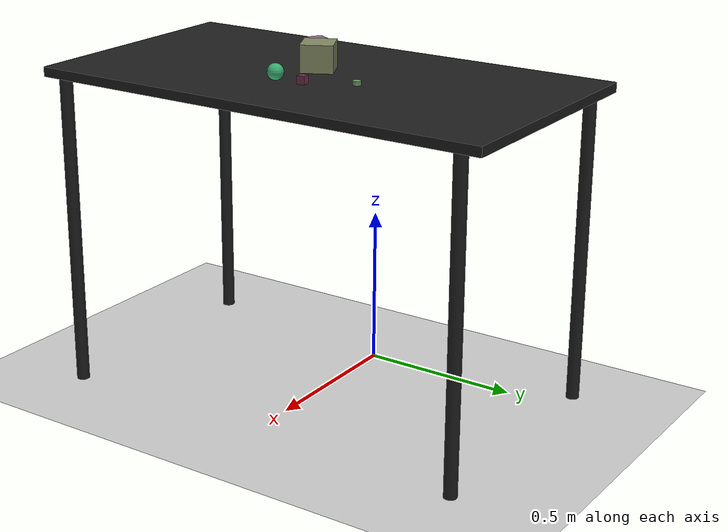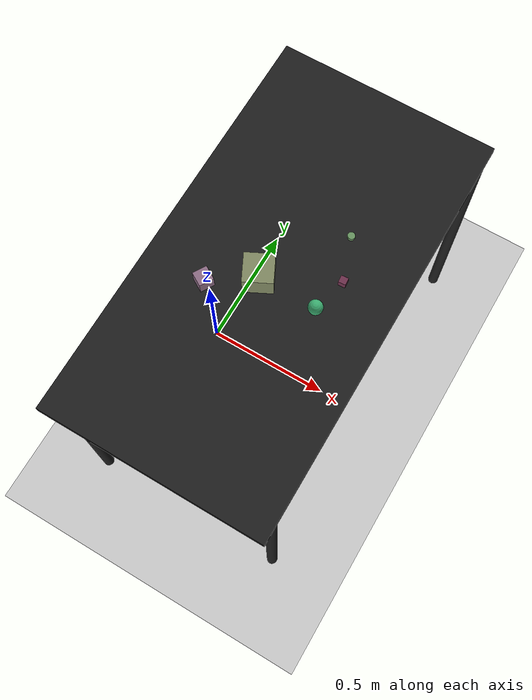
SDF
<?xml version="1.0" ?>
<sdf version="1.6">
  <world name="arm_world">
    <plugin filename="gz-sim-physics-system" name="gz::sim::systems::Physics">
      <engine>
        <filename>libgz-physics-bullet-featherstone-plugin.so</filename>
      </engine>
    </plugin>
    <plugin filename="gz-sim-user-commands-system" name="gz::sim::systems::UserCommands"/>
    <plugin filename="gz-sim-scene-broadcaster-system" name="gz::sim::systems::SceneBroadcaster"/>
    <plugin filename="gz-sim-sensors-system" name="gz::sim::systems::Sensors">
      <render_engine>ogre2</render_engine>
    </plugin>
    <gravity>0.0 0.0 -9.8</gravity>
    <scene>
      <shadows>false</shadows>
    </scene>
    <gui>
      <camera name="user_camera">
        <pose>0.75 -0.75 1.4 0 0.29 2.21</pose>
      </camera>
    </gui>
    <include>
      <uri>https://fuel.gazebosim.org/1.0/OpenRobotics/models/Sun</uri>
    </include>
    <model name="table">
      <static>true</static>
      <include>
        <uri>model://table</uri>
      </include>
      <pose>0.29 0 0 0 0 1.5708</pose>
    </model>
    <model name="ground_plane">
      <static>true</static>
      <link name="link">
        <collision name="collision">
          <geometry>
            <plane>
              <normal>0 0 1</normal>
            </plane>
          </geometry>
          <surface>
            <friction>
              <ode>
                <mu>1.0</mu>
                <mu2>1.0</mu2>
              </ode>
            </friction>
          </surface>
        </collision>
        <visual name="visual">
          <geometry>
            <plane>
              <normal>0 0 1</normal>
              <size>100 100</size>
            </plane>
          </geometry>
          <material>
            <ambient>0.8 0.8 0.8 1</ambient>
            <diffuse>0.8 0.8 0.8 1</diffuse>
            <specular>0.8 0.8 0.8 1</specular>
          </material>
        </visual>
      </link>
    </model>
    <model name="cube_s_0">
      <pose>0.493 0.065 1.05 0 0 3.22</pose>
      <link name="cube_s_0_link">
        <inertial>
          <mass>0.05</mass>
          <inertia>
            <ixx>2.04e-7</ixx>
            <iyy>2.04e-7</iyy>
            <izz>3.9e-8</izz>
            <ixy>0</ixy>
            <ixz>0</ixz>
            <iyz>0</iyz>
          </inertia>
        </inertial>
        <collision name="cube_s_0_collision">
          <geometry>
            <box>
              <size>0.025 0.025 0.025</size>
            </box>
          </geometry>
          <surface>
            <friction>
              <ode>
                <mu>0.8</mu>
                <mu2>0.8</mu2>
                <fdir1>0 0 1</fdir1>
                <slip1>0.001</slip1>
                <slip2>0.001</slip2>
              </ode>
              <torsional>
                <coefficient>0.1</coefficient>
                <surface_radius>0.015</surface_radius>
                <use_patch_radius>true</use_patch_radius>
              </torsional>
            </friction>
            <contact>
              <ode>
                <kp>1e5</kp>
                <kd>10</kd>
                <max_vel>0.1</max_vel>
                <min_depth>0.001</min_depth>
                <soft_cfm>0.01</soft_cfm>
                <soft_erp>0.2</soft_erp>
              </ode>
            </contact>
            <bounce>
              <restitution_coefficient>0.2</restitution_coefficient>
              <threshold>0.01</threshold>
            </bounce>
          </surface>
        </collision>
        <visual name="cube_s_0_visual">
          <geometry>
            <box>
              <size>0.025 0.025 0.025</size>
            </box>
          </geometry>
          <material>
            <ambient>0.43 0.19 0.3 1</ambient>
            <diffuse>0.43 0.19 0.3 1</diffuse>
          </material>
        </visual>
        <velocity_decay>
          <linear>1</linear>
          <angular>1</angular>
        </velocity_decay>
      </link>
    </model>
    <model name="cube_m_1">
      <pose>0.113 -0.148 1.05 0 0 1.03</pose>
      <link name="cube_m_1_link">
        <inertial>
          <mass>0.05</mass>
          <inertia>
            <ixx>2.04e-7</ixx>
            <iyy>2.04e-7</iyy>
            <izz>3.9e-8</izz>
            <ixy>0</ixy>
            <ixz>0</ixz>
            <iyz>0</iyz>
          </inertia>
        </inertial>
        <collision name="cube_m_1_collision">
          <geometry>
            <box>
              <size>0.05 0.05 0.05</size>
            </box>
          </geometry>
          <surface>
            <friction>
              <ode>
                <mu>0.8</mu>
                <mu2>0.8</mu2>
                <fdir1>0 0 1</fdir1>
                <slip1>0.001</slip1>
                <slip2>0.001</slip2>
              </ode>
              <torsional>
                <coefficient>0.1</coefficient>
                <surface_radius>0.015</surface_radius>
                <use_patch_radius>true</use_patch_radius>
              </torsional>
            </friction>
            <contact>
              <ode>
                <kp>1e5</kp>
                <kd>10</kd>
                <max_vel>0.1</max_vel>
                <min_depth>0.001</min_depth>
                <soft_cfm>0.01</soft_cfm>
                <soft_erp>0.2</soft_erp>
              </ode>
            </contact>
            <bounce>
              <restitution_coefficient>0.2</restitution_coefficient>
              <threshold>0.01</threshold>
            </bounce>
          </surface>
        </collision>
        <visual name="cube_m_1_visual">
          <geometry>
            <box>
              <size>0.05 0.05 0.05</size>
            </box>
          </geometry>
          <material>
            <ambient>0.56 0.43 0.53 1</ambient>
            <diffuse>0.56 0.43 0.53 1</diffuse>
          </material>
        </visual>
        <velocity_decay>
          <linear>1</linear>
          <angular>1</angular>
        </velocity_decay>
      </link>
    </model>
    <model name="cube_l_2">
      <pose>0.253 -0.046 1.05 0 0 5.18</pose>
      <link name="cube_l_2_link">
        <inertial>
          <mass>0.05</mass>
          <inertia>
            <ixx>2.04e-7</ixx>
            <iyy>2.04e-7</iyy>
            <izz>3.9e-8</izz>
            <ixy>0</ixy>
            <ixz>0</ixz>
            <iyz>0</iyz>
          </inertia>
        </inertial>
        <collision name="cube_l_2_collision">
          <geometry>
            <box>
              <size>0.1 0.1 0.1</size>
            </box>
          </geometry>
          <surface>
            <friction>
              <ode>
                <mu>0.8</mu>
                <mu2>0.8</mu2>
                <fdir1>0 0 1</fdir1>
                <slip1>0.001</slip1>
                <slip2>0.001</slip2>
              </ode>
              <torsional>
                <coefficient>0.1</coefficient>
                <surface_radius>0.015</surface_radius>
                <use_patch_radius>true</use_patch_radius>
              </torsional>
            </friction>
            <contact>
              <ode>
                <kp>1e5</kp>
                <kd>10</kd>
                <max_vel>0.1</max_vel>
                <min_depth>0.001</min_depth>
                <soft_cfm>0.01</soft_cfm>
                <soft_erp>0.2</soft_erp>
              </ode>
            </contact>
            <bounce>
              <restitution_coefficient>0.2</restitution_coefficient>
              <threshold>0.01</threshold>
            </bounce>
          </surface>
        </collision>
        <visual name="cube_l_2_visual">
          <geometry>
            <box>
              <size>0.1 0.1 0.1</size>
            </box>
          </geometry>
          <material>
            <ambient>0.51 0.54 0.39 1</ambient>
            <diffuse>0.51 0.54 0.39 1</diffuse>
          </material>
        </visual>
        <velocity_decay>
          <linear>1</linear>
          <angular>1</angular>
        </velocity_decay>
      </link>
    </model>
    <model name="sphere_m_3">
      <pose>0.461 -0.053 1.05 0 0 6.1</pose>
      <link name="sphere_m_3_link">
        <inertial>
          <mass>0.05</mass>
          <inertia>
            <ixx>2.04e-7</ixx>
            <iyy>2.04e-7</iyy>
            <izz>3.9e-8</izz>
            <ixy>0</ixy>
            <ixz>0</ixz>
            <iyz>0</iyz>
          </inertia>
        </inertial>
        <collision name="sphere_m_3_collision">
          <geometry>
            <sphere>
              <radius>0.025</radius>
            </sphere>
          </geometry>
          <surface>
            <friction>
              <ode>
                <mu>0.8</mu>
                <mu2>0.8</mu2>
                <fdir1>0 0 1</fdir1>
                <slip1>0.001</slip1>
                <slip2>0.001</slip2>
              </ode>
              <torsional>
                <coefficient>0.1</coefficient>
                <surface_radius>0.015</surface_radius>
                <use_patch_radius>true</use_patch_radius>
              </torsional>
            </friction>
            <contact>
              <ode>
                <kp>1e5</kp>
                <kd>10</kd>
                <max_vel>0.1</max_vel>
                <min_depth>0.001</min_depth>
                <soft_cfm>0.01</soft_cfm>
                <soft_erp>0.2</soft_erp>
              </ode>
            </contact>
            <bounce>
              <restitution_coefficient>0.2</restitution_coefficient>
              <threshold>0.01</threshold>
            </bounce>
          </surface>
        </collision>
        <visual name="sphere_m_3_visual">
          <geometry>
            <sphere>
              <radius>0.025</radius>
            </sphere>
          </geometry>
          <material>
            <ambient>0.23 0.68 0.44 1</ambient>
            <diffuse>0.23 0.68 0.44 1</diffuse>
          </material>
        </visual>
        <velocity_decay>
          <linear>1</linear>
          <angular>1</angular>
        </velocity_decay>
      </link>
    </model>
    <model name="cylinder_s_4">
      <pose>0.44 0.213 1.05 0 0 2.66</pose>
      <link name="cylinder_s_4_link">
        <inertial>
          <mass>0.05</mass>
          <inertia>
            <ixx>2.04e-7</ixx>
            <iyy>2.04e-7</iyy>
            <izz>3.9e-8</izz>
            <ixy>0</ixy>
            <ixz>0</ixz>
            <iyz>0</iyz>
          </inertia>
        </inertial>
        <collision name="cylinder_s_4_collision">
          <geometry>
            <cylinder>
              <radius>0.0125</radius>
              <length>0.0125</length>
            </cylinder>
          </geometry>
          <surface>
            <friction>
              <ode>
                <mu>0.8</mu>
                <mu2>0.8</mu2>
                <fdir1>0 0 1</fdir1>
                <slip1>0.001</slip1>
                <slip2>0.001</slip2>
              </ode>
              <torsional>
                <coefficient>0.1</coefficient>
                <surface_radius>0.015</surface_radius>
                <use_patch_radius>true</use_patch_radius>
              </torsional>
            </friction>
            <contact>
              <ode>
                <kp>1e5</kp>
                <kd>10</kd>
                <max_vel>0.1</max_vel>
                <min_depth>0.001</min_depth>
                <soft_cfm>0.01</soft_cfm>
                <soft_erp>0.2</soft_erp>
              </ode>
            </contact>
            <bounce>
              <restitution_coefficient>0.2</restitution_coefficient>
              <threshold>0.01</threshold>
            </bounce>
          </surface>
        </collision>
        <visual name="cylinder_s_4_visual">
          <geometry>
            <cylinder>
              <radius>0.0125</radius>
              <length>0.0125</length>
            </cylinder>
          </geometry>
          <material>
            <ambient>0.41 0.59 0.38 1</ambient>
            <diffuse>0.41 0.59 0.38 1</diffuse>
          </material>
        </visual>
        <velocity_decay>
          <linear>1</linear>
          <angular>1</angular>
        </velocity_decay>
      </link>
    </model>
  </world>
</sdf>

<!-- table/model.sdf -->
<sdf version="1.5">
  <model name="table">
    <static>true</static>
    <link name="link">
      <collision name="surface">
        <pose>0 0 1.0 0 0 0</pose>
        <geometry>
          <box>
            <size>1.5 0.8 0.03</size>
          </box>
        </geometry>
        <surface>
          <friction>
            <ode>
              <mu>0.6</mu>
              <mu2>0.6</mu2>
            </ode>
          </friction>
        </surface>
      </collision>
      <visual name="surface">
        <pose>0 0 1.0 0 0 0</pose>
        <geometry>
          <box>
            <size>1.5 0.8 0.03</size>
          </box>
        </geometry>
        <material>
          <script>
            <uri>file://media/materials/scripts/gazebo.material</uri>
            <name>Gazebo/Black</name>
          </script>
        </material>
      </visual>
      <collision name="front_left_leg">
        <pose>0.68 0.38 0.5 0 0 0</pose>
        <geometry>
          <cylinder>
            <radius>0.02</radius>
            <length>1.0</length>
          </cylinder>
        </geometry>
      </collision>
      <visual name="front_left_leg">
        <pose>0.68 0.38 0.5 0 0 0</pose>
        <geometry>
          <cylinder>
            <radius>0.02</radius>
            <length>1.0</length>
          </cylinder>
        </geometry>
        <material>
          <script>
            <uri>file://media/materials/scripts/gazebo.material</uri>
            <name>Gazebo/Black</name>
          </script>
        </material>
      </visual>
      <collision name="front_right_leg">
        <pose>0.68 -0.38 0.5 0 0 0</pose>
        <geometry>
          <cylinder>
            <radius>0.02</radius>
            <length>1.0</length>
          </cylinder>
        </geometry>
      </collision>
      <visual name="front_right_leg">
        <pose>0.68 -0.38 0.5 0 0 0</pose>
        <geometry>
          <cylinder>
            <radius>0.02</radius>
            <length>1.0</length>
          </cylinder>
        </geometry>
        <material>
          <script>
            <uri>file://media/materials/scripts/gazebo.material</uri>
            <name>Gazebo/Black</name>
          </script>
        </material>
      </visual>
      <collision name="back_right_leg">
        <pose>-0.68 -0.38 0.5 0 0 0</pose>
        <geometry>
          <cylinder>
            <radius>0.02</radius>
            <length>1.0</length>
          </cylinder>
        </geometry>
      </collision>
      <visual name="back_right_leg">
        <pose>-0.68 -0.38 0.5 0 0 0</pose>
        <geometry>
          <cylinder>
            <radius>0.02</radius>
            <length>1.0</length>
          </cylinder>
        </geometry>
        <material>
          <script>
            <uri>file://media/materials/scripts/gazebo.material</uri>
            <name>Gazebo/Black</name>
          </script>
        </material>
      </visual>
      <collision name="back_left_leg">
        <pose>-0.68 0.38 0.5 0 0 0</pose>
        <geometry>
          <cylinder>
            <radius>0.02</radius>
            <length>1.0</length>
          </cylinder>
        </geometry>
      </collision>
      <visual name="back_left_leg">
        <pose>-0.68 0.38 0.5 0 0 0</pose>
        <geometry>
          <cylinder>
            <radius>0.02</radius>
            <length>1.0</length>
          </cylinder>
        </geometry>
        <material>
          <script>
            <uri>file://media/materials/scripts/gazebo.material</uri>
            <name>Gazebo/Black</name>
          </script>
        </material>
      </visual>
    </link>
  </model>
</sdf>
